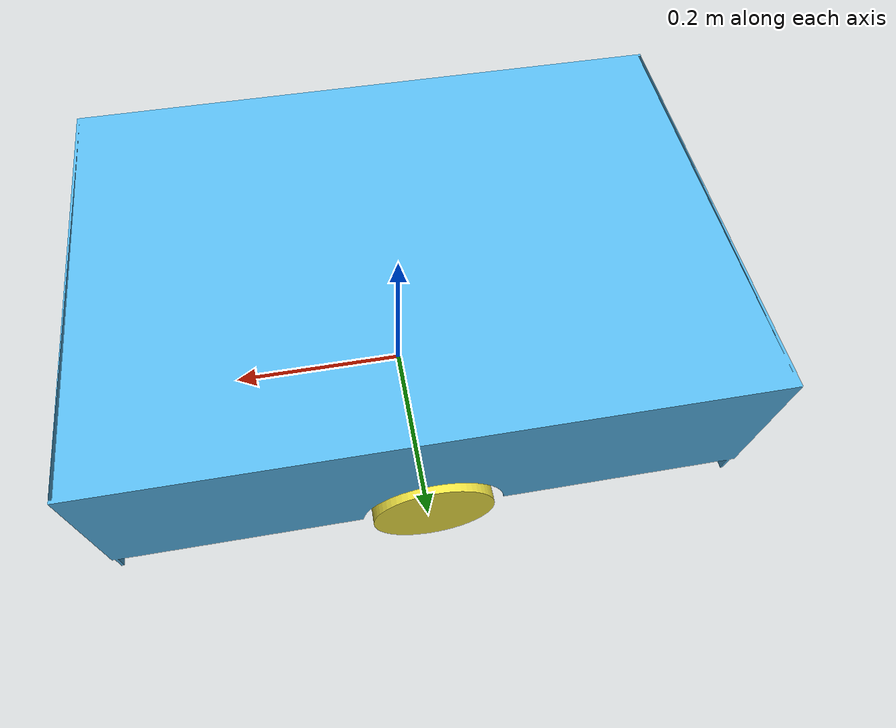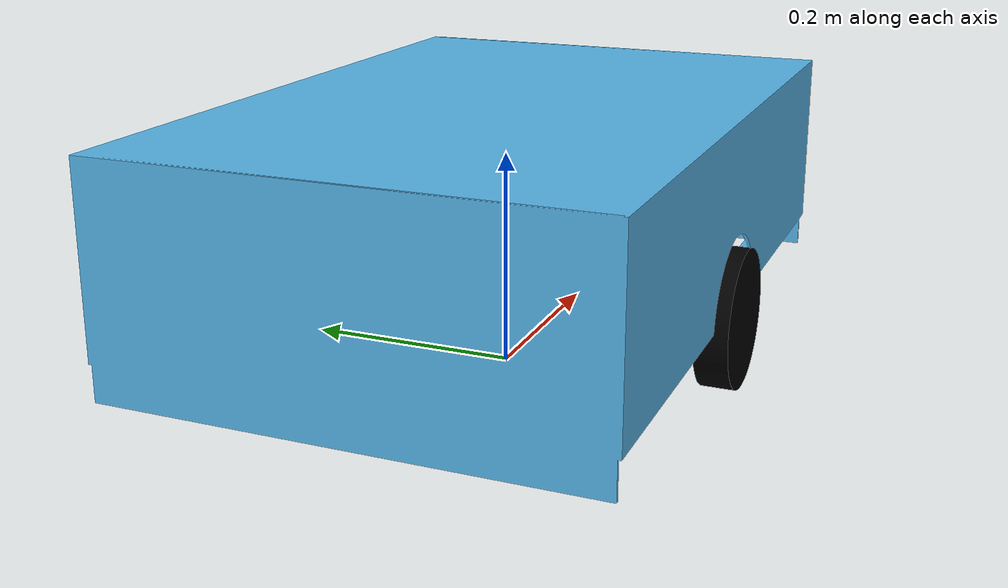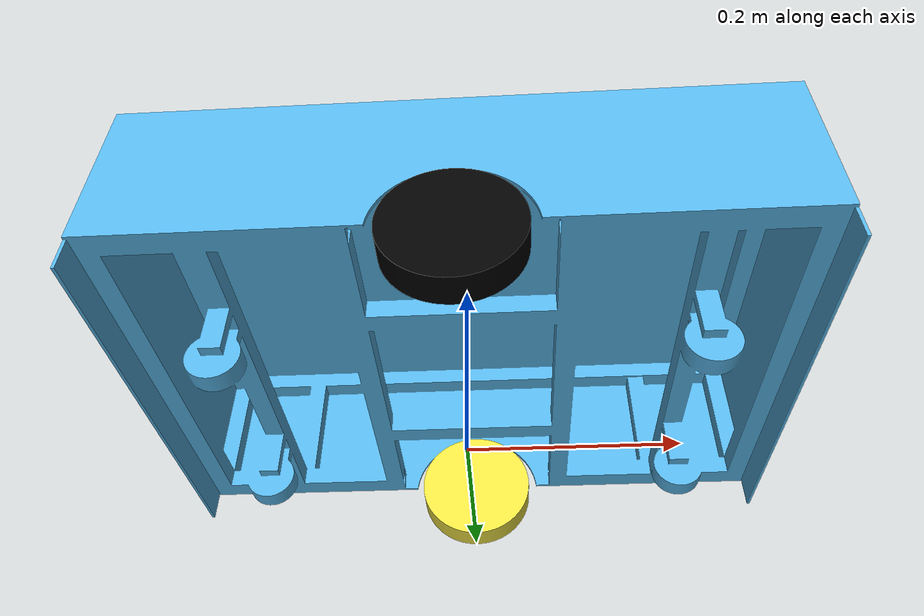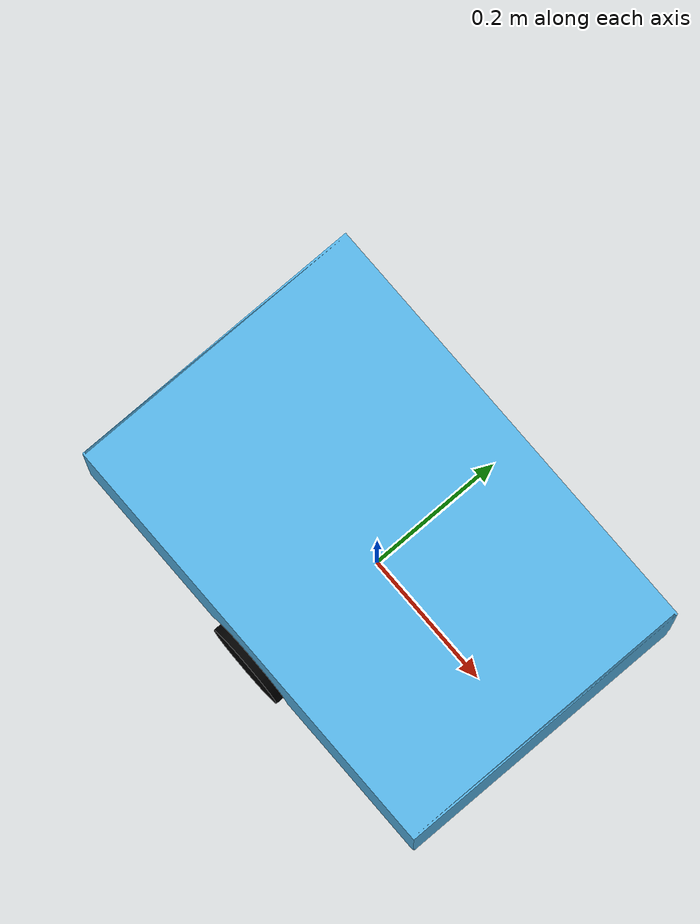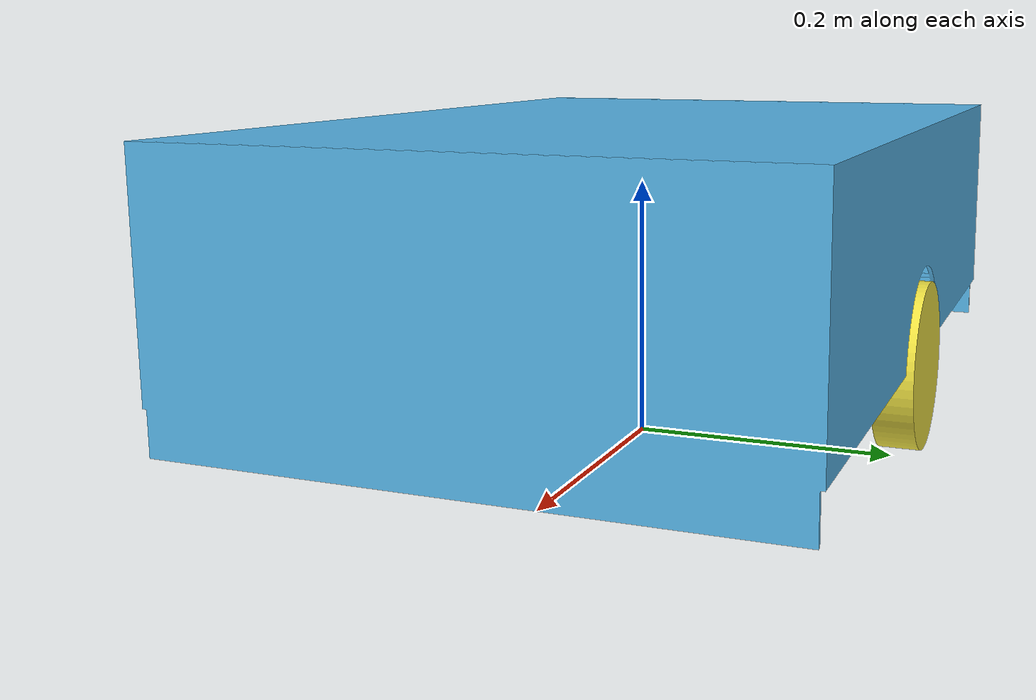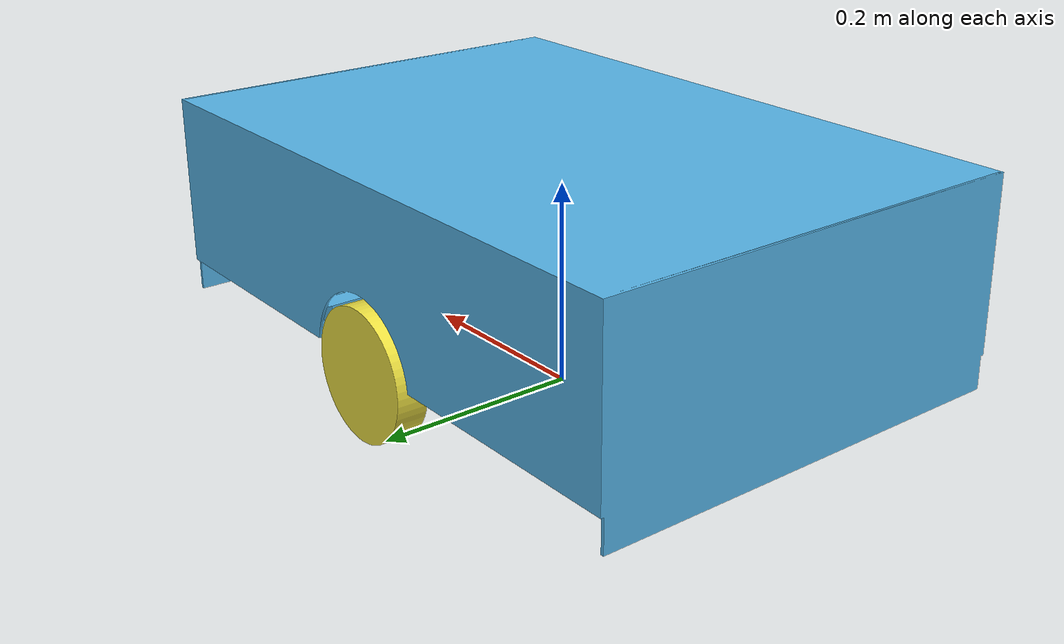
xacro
<?xml version="1.0"?>
<robot name="robomuse">

 <link name="base_footprint"/>

  <joint name="base_joint" type="fixed">
    <parent link="base_footprint"/>
    <child link="rm_chassis" />
    <origin xyz="0 0 0.010" rpy="0 0 0"/>
  </joint>

 <link name='rm_chassis'>

    <inertial>
      <mass value="10.0"/>
      <!--origin at CG-->
      <origin xyz="0 0 0.12" rpy=" 0 0 0"/>
      <inertia ixx="1.195" ixy="0" ixz="0" iyy="1.3839" iyz="0"  izz="0.4883"/>
    </inertial>

   <visual name='chassis_visual'>
      <origin xyz="0 0 0" rpy=" 0 0 0"/>
      <geometry>

        <mesh filename="package://rm_description/models/rm_chassis.stl" scale = ".1 .1 .1"/>
      </geometry>
    </visual>
    <collision name='rmcollision'>
      <origin xyz="0 0 0" rpy=" 0 0 0"/>
      <geometry>
        <mesh filename="package://rm_description/models/rm_chassis.stl" scale = ".1 .1 .1"/>
      </geometry>
    </collision>

 </link>

  <joint name="leftwheel_joint" type="continuous">
    <parent link="rm_chassis"/>
    <child link="rm_leftwheel" />
    <origin xyz="0 -.21 0.0620" rpy="0 0 0"/>
    <axis  xyz = "0 1 0"/>
  </joint>

  <link name='rm_leftwheel'>

    <inertial>
      <mass value="0.1"/>
      <origin xyz="0 0 0" rpy=" 0 0 0"/>
      <inertia ixx="0.0001" ixy="0" ixz="0" iyy="0.0002" iyz="0"  izz="0.0001"/>
    </inertial>
    <visual name='leftwheel_visual'>
      <origin xyz="0 0 0" rpy=" 0 0 0"/>
      <geometry>
        <mesh filename="package://rm_description/models/rm_leftwheel.stl" scale = ".01 .01 .01"/>
      </geometry>
      <material name="black">
        <color rgba="0.0 0.0 0.0 1.0"/>
      </material>
    </visual>
    <collision name='leftwheel_collision'>
      <geometry>
        <mesh filename="package://rm_description/models/rm_leftwheel.stl" scale = ".01 .01 .01"/>
      </geometry>
    </collision>

  </link>

  <joint name="rightwheel_joint" type="continuous">
    <parent link="rm_chassis"/>
    <child link="rm_rightwheel" />
    <origin xyz="0 .21 0.0620" rpy="0 0 0"/>
    <axis  xyz = "0 1 0"/>
  </joint>

  <link name='rm_rightwheel'>

    <inertial>
      <mass value="0.1"/>
      <origin xyz="0 0 0" rpy=" 0 0 0"/>
      <inertia ixx="0.0001" ixy="0" ixz="0" iyy="0.0002" iyz="0"  izz="0.0001"/>
    </inertial>
    <visual name='rightwheel_visual'>
      <origin xyz="0 0 0" rpy=" 0 0 0"/>
      <geometry>
        <mesh filename="package://rm_description/models/rm_leftwheel.stl" scale = ".01 .01 .01"/>
      </geometry>
    </visual>
    <collision name='rightwheel_collision'>
      <geometry>
        <mesh filename="package://rm_description/models/rm_leftwheel.stl" scale = ".01 .01 .01"/>
      </geometry>
    </collision>
  </link>

 <gazebo reference="rm_chassis">
 <mu1>0</mu1>
 <mu2>0</mu2>
 </gazebo>
<gazebo reference="rm_rightwheel">
 <mu1>50</mu1>
 <mu2>50</mu2>
 </gazebo>
 <gazebo reference="rm_leftwheel">
 <mu1>50</mu1>
 <mu2>50</mu2>
 </gazebo>

 <gazebo>

 <plugin name="differential_drive_controller" filename="libgazebo_ros_diff_drive.so">

 <alwaysOn>true</alwaysOn>
 <commandTopic>cmd_vel</commandTopic>
 <odometryTopic>odom</odometryTopic>
 <odometryFrame>odom</odometryFrame>
 <odometrySource>world</odometrySource>
 <publishOdomTF>true</publishOdomTF>
 <robotBaseFrame>base_footprint</robotBaseFrame>
 <publishWheelTF>false</publishWheelTF>
 <publishTf>true</publishTf>
 <publishWheelJointState>true</publishWheelJointState>
 <legacyMode>false</legacyMode>
 <updateRate>30</updateRate>
 <leftJoint>leftwheel_joint</leftJoint>
 <rightJoint>rightwheel_joint</rightJoint>
 <wheelSeparation>0.42</wheelSeparation>
 <wheelDiameter>0.125</wheelDiameter>
 <wheelAcceleration>0.2</wheelAcceleration>
 <wheelTorque>1</wheelTorque>
 <rosDebugLevel>na</rosDebugLevel>

 </plugin>

 </gazebo>

</robot>
